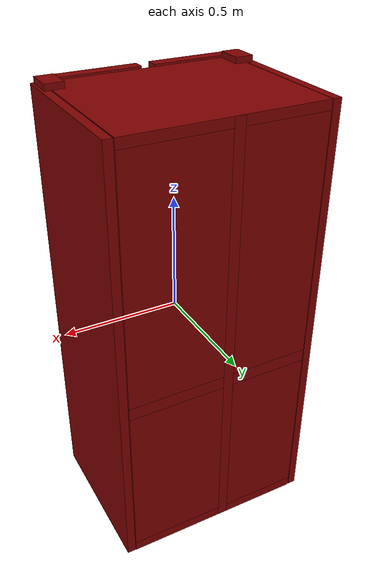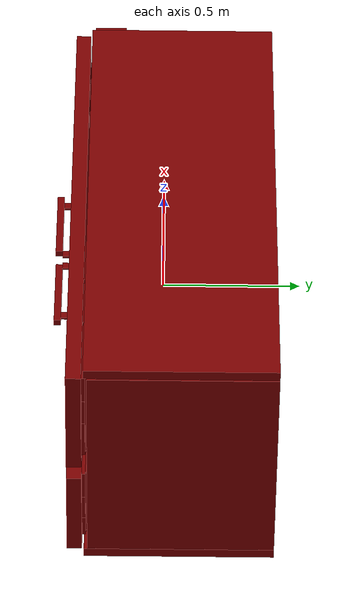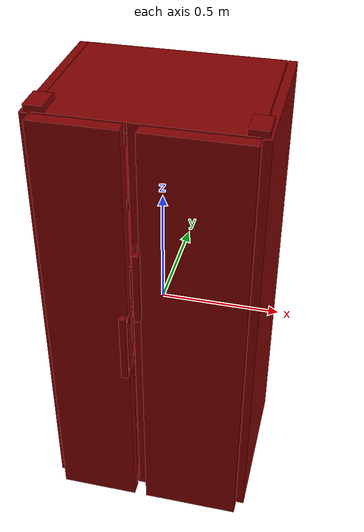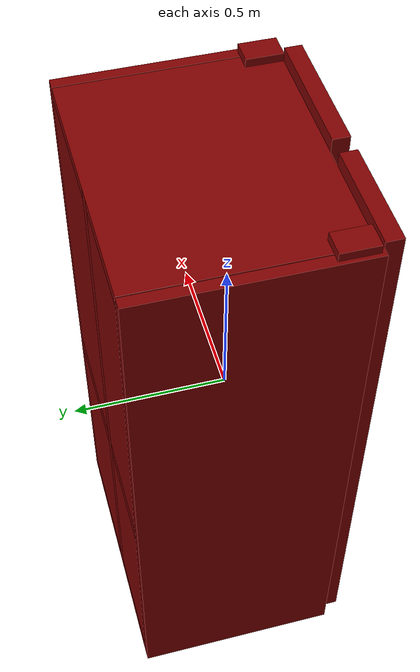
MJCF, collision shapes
<mujoco model="model">
  <compiler angle="radian"/>
  <asset>
    <mesh file="visuals/Body001.obj" name="Body001_vis"/>
    <mesh file="visuals/Body001_Clear.obj" name="Body001_Clear_vis"/>
    <mesh file="visuals/Door001.obj" name="Door001_vis"/>
    <mesh file="visuals/Door001_Clear.obj" name="Door001_Clear_vis"/>
    <mesh file="visuals/Door002.obj" name="Door002_vis"/>
    <mesh file="visuals/Door002_Clear.obj" name="Door002_Clear_vis"/>
    <mesh file="visuals/Drawer001.obj" name="Drawer001_vis"/>
    <mesh file="visuals/Drawer002.obj" name="Drawer002_vis"/>
    <mesh file="visuals/Drawer003.obj" name="Drawer003_vis"/>
    <mesh file="visuals/Drawer004.obj" name="Drawer004_vis"/>
    <mesh file="visuals/Drawer005.obj" name="Drawer005_vis"/>
    <mesh file="visuals/Drawer006.obj" name="Drawer006_vis"/>
    <mesh file="visuals/Drawer007.obj" name="Drawer007_vis"/>
    <mesh file="visuals/Drawer008.obj" name="Drawer008_vis"/>
    <mesh file="visuals/Drawer009.obj" name="Drawer009_vis"/>
    <mesh file="visuals/Drawer010.obj" name="Drawer010_vis"/>
    <texture file="visuals/T_BC001.png" name="Body001_material" type="2d"/>
    <material name="Body001_material" rgba="1 1 1 1.0" texture="Body001_material" shininess="0.2512328028678894" specular="1"/>
    <texture file="visuals/T_BC001.png" name="Body001_Clear_material" type="2d"/>
    <material name="Body001_Clear_material" rgba="1 1 1 0.307692289352417" texture="Body001_Clear_material" shininess="0.2512328028678894" specular="1"/>
    <texture file="visuals/T_BC001.png" name="Door001_material" type="2d"/>
    <material name="Door001_material" rgba="1 1 1 1.0" texture="Door001_material" shininess="0.2512328028678894" specular="1"/>
    <texture file="visuals/T_BC001.png" name="Door001_Clear_material" type="2d"/>
    <material name="Door001_Clear_material" rgba="1 1 1 0.307692289352417" texture="Door001_Clear_material" shininess="0.2512328028678894" specular="1"/>
    <texture file="visuals/T_BC001.png" name="Door002_material" type="2d"/>
    <material name="Door002_material" rgba="1 1 1 1.0" texture="Door002_material" shininess="0.2512328028678894" specular="1"/>
    <texture file="visuals/T_BC001.png" name="Drawer001_material" type="2d"/>
    <material name="Drawer001_material" rgba="1 1 1 0.307692289352417" texture="Drawer001_material" shininess="0.2512328028678894" specular="1"/>
    <texture file="visuals/T_BC001.png" name="Drawer002_material" type="2d"/>
    <material name="Drawer002_material" rgba="1 1 1 0.307692289352417" texture="Drawer002_material" shininess="0.2512328028678894" specular="1"/>
    <texture file="visuals/T_BC001.png" name="Drawer003_material" type="2d"/>
    <material name="Drawer003_material" rgba="1 1 1 1.0" texture="Drawer003_material" shininess="0.2512328028678894" specular="1"/>
    <texture file="visuals/T_BC001.png" name="Drawer004_material" type="2d"/>
    <material name="Drawer004_material" rgba="1 1 1 1.0" texture="Drawer004_material" shininess="0.2512328028678894" specular="1"/>
    <texture file="visuals/T_BC001.png" name="Drawer005_material" type="2d"/>
    <material name="Drawer005_material" rgba="1 1 1 1.0" texture="Drawer005_material" shininess="0.2512328028678894" specular="1"/>
    <texture file="visuals/T_BC001.png" name="Drawer006_material" type="2d"/>
    <material name="Drawer006_material" rgba="1 1 1 1.0" texture="Drawer006_material" shininess="0.2512328028678894" specular="1"/>
    <texture file="visuals/T_BC001.png" name="Drawer007_material" type="2d"/>
    <material name="Drawer007_material" rgba="1 1 1 1.0" texture="Drawer007_material" shininess="0.2512328028678894" specular="1"/>
    <texture file="visuals/T_BC001.png" name="Drawer008_material" type="2d"/>
    <material name="Drawer008_material" rgba="1 1 1 1.0" texture="Drawer008_material" shininess="0.2512328028678894" specular="1"/>
    <texture file="visuals/T_BC001.png" name="Drawer009_material" type="2d"/>
    <material name="Drawer009_material" rgba="1 1 1 1.0" texture="Drawer009_material" shininess="0.2512328028678894" specular="1"/>
    <texture file="visuals/T_BC001.png" name="Drawer010_material" type="2d"/>
    <material name="Drawer010_material" rgba="1 1 1 1.0" texture="Drawer010_material" shininess="0.2512328028678894" specular="1"/>
  </asset>
  <default>
    <default class="visual">
      <geom conaffinity="0" contype="0" group="1" type="mesh"/>
    </default>
    <default class="collision">
      <geom group="0" rgba="0.5 0 0 0.5"/>
    </default>
    <default class="spawn">
      <geom group="0" rgba="1 1 1 0.5" contype="0" conaffinity="0"/>
      <site group="0" rgba="1 1 1 0.5"/>
    </default>
    <default class="region">
      <geom group="1" conaffinity="0" contype="0" rgba="0 1 0 0"/>
    </default>
  </default>
  <worldbody>
    <body>
      <body name="object">
        <geom mesh="Body001_vis" type="mesh" solimp="0.998 0.998 0.001" solref="0.001 1" density="100" friction="0.95 0.3 0.1" class="visual" material="Body001_material"/>
        <geom class="collision" type="box" pos="-0.4314097464084625 0.06337001919746399 -0.00506026204675436" size="0.01807491108775139 0.3385934829711914 0.9483897686004639" quat="1.0 0.0 0.0 0.0"/>
        <geom class="collision" type="box" pos="0.43142756819725037 0.06337001919746399 -0.00506026204675436" size="0.018074944615364075 0.3385940492153168 0.9483909010887146" quat="1.0 0.0 0.0 0.0"/>
        <geom class="collision" type="box" pos="-0.03617599606513977 0.06932438910007477 -0.00506026204675436" size="0.02239586040377617 0.33264604210853577 0.9484035968780518" quat="1.0 0.0 0.0 0.0"/>
        <geom class="collision" type="box" pos="-6.0811638832092285e-05 0.06932438910007477 -0.1588442325592041" size="0.4097903072834015 0.33264076709747314 0.02770553156733513" quat="1.0 0.0 0.0 0.0"/>
        <geom class="collision" type="box" pos="-6.081196988816373e-05 0.06932438910007477 0.9237262010574341" size="0.40979087352752686 0.3326413035392761 0.020109102129936218" quat="1.0 0.0 0.0 0.0"/>
        <geom class="collision" type="box" pos="-6.081513129174709e-05 0.31269246339797974 -0.005961598362773657" size="0.409791499376297 0.08925499022006989 0.9489522576332092" quat="1.0 0.0 0.0 0.0"/>
        <geom class="collision" type="box" pos="-6.081224637455307e-05 0.06932438910007477 -0.9327043294906616" size="0.4097919762134552 0.33264240622520447 0.022771652787923813" quat="1.0 0.0 0.0 0.0"/>
        <geom class="collision" type="box" pos="-0.3987797796726227 -0.2059071958065033 0.9563660621643066" size="0.03880257532000542 0.057414062321186066 0.013140099123120308" quat="1.0 0.0 0.0 0.0"/>
        <geom class="collision" type="box" pos="0.39935022592544556 -0.2059071958065033 0.9563660621643066" size="0.03880264237523079 0.05741412937641144 0.013140116818249226" quat="1.0 0.0 0.0 0.0"/>
        <body name="Body001_Clear">
          <geom mesh="Body001_Clear_vis" type="mesh" solimp="0.998 0.998 0.001" solref="0.001 1" density="100" friction="0.95 0.3 0.1" class="visual" material="Body001_Clear_material"/>
          <geom class="collision" type="box" pos="-0.23665212094783783 0.010217373259365559 0.5880203247070312" size="0.17314791679382324 0.20181740820407867 0.003748399903997779" quat="1.0 0.0 0.0 0.0"/>
          <geom class="collision" type="box" pos="0.19985148310661316 0.010217373259365559 0.5887021422386169" size="0.2091819941997528 0.2018178105354309 0.0037484061904251575" quat="1.0 0.0 0.0 0.0"/>
          <geom class="collision" type="box" pos="-0.23665212094783783 0.010217373259365559 0.27085381746292114" size="0.173148512840271 0.20181860029697418 0.003748418530449271" quat="1.0 0.0 0.0 0.0"/>
          <geom class="collision" type="box" pos="0.19985148310661316 0.010217373259365559 0.27153563499450684" size="0.20918317139148712 0.20181900262832642 0.00374842481687665" quat="1.0 0.0 0.0 0.0"/>
          <geom class="collision" type="box" pos="-0.23665212094783783 0.010217373259365559 0.09032253175973892" size="0.17314891517162323 0.20181940495967865 0.0037484311033040285" quat="1.0 0.0 0.0 0.0"/>
          <geom class="collision" type="box" pos="0.19985148310661316 0.010217373259365559 0.09100434929132462" size="0.2091839760541916 0.20181980729103088 0.003748437389731407" quat="1.0 0.0 0.0 0.0"/>
        </body>
        <body name="Door001">
          <joint axis="0.0 0.0 -1.0" pos="-0.41990166902542114 -0.3070699870586395 -0.1195378378033638" limited="true" name="Door001_joint" range="0.0 1.5707963267948966" type="hinge" damping="1" frictionloss="1" armature=".01" stiffness="0.05"/>
          <geom mesh="Door001_vis" type="mesh" solimp="0.998 0.998 0.001" solref="0.001 1" density="100" friction="0.95 0.3 0.1" class="visual" material="Door001_material"/>
          <geom class="collision" type="box" pos="-0.23585756123065948 -0.30889829993247986 -0.004155337810516357" size="0.17306047677993774 0.02668202668428421 0.9516863822937012" quat="1.0 0.0 0.0 0.0"/>
          <geom class="collision" type="box" pos="-0.06611627340316772 -0.3872798681259155 0.015286712907254696" size="0.012665143236517906 0.012665143236517906 0.1547602117061615" quat="1.0 0.0 0.0 0.0"/>
          <geom class="collision" type="box" pos="-0.047427210956811905 -0.3475547432899475 0.1526123583316803" size="0.004406571388244629 0.027533311396837234 0.014519368298351765" quat="1.0 0.0 0.0 0.0"/>
          <geom class="collision" type="box" pos="-0.047427210956811905 -0.3475547432899475 -0.12197266519069672" size="0.004406571388244629 0.027533311396837234 0.014519368298351765" quat="1.0 0.0 0.0 0.0"/>
          <body name="Door001_Clear">
            <geom mesh="Door001_Clear_vis" type="mesh" solimp="0.998 0.998 0.001" solref="0.001 1" density="100" friction="0.95 0.3 0.1" class="visual" material="Door001_Clear_material"/>
            <geom class="collision" type="box" pos="-0.24373874068260193 -0.27963539958000183 0.7416618466377258" size="0.14503848552703857 0.0009392445208504796 0.049916304647922516" quat="1.0 0.0 0.0 0.0"/>
            <geom class="collision" type="box" pos="-0.3864028751850128 -0.2427847981452942 0.741767406463623" size="0.0009392529027536511 0.03547966107726097 0.04981076717376709" quat="1.0 0.0 0.0 0.0"/>
            <geom class="collision" type="box" pos="-0.24444666504859924 -0.2059074193239212 0.741767406463623" size="0.1408872902393341 0.0009392508072778583 0.04981076717376709" quat="1.0 0.0 0.0 0.0"/>
            <geom class="collision" type="box" pos="-0.10058680176734924 -0.2427847981452942 0.741767406463623" size="0.0009392523788847029 0.03547966107726097 0.04981076717376709" quat="1.0 0.0 0.0 0.0"/>
            <geom class="collision" type="box" pos="-0.24302120506763458 -0.2426450401544571 0.6924877762794495" size="0.14432090520858765 0.0376768633723259 0.0009392482461407781" quat="1.0 0.0 0.0 0.0"/>
            <geom class="collision" type="box" pos="-0.24373874068260193 -0.27963539958000183 0.5614317059516907" size="0.14503848552703857 0.0009392445208504796 0.049916304647922516" quat="1.0 0.0 0.0 0.0"/>
            <geom class="collision" type="box" pos="-0.3864028751850128 -0.2427847981452942 0.5615372657775879" size="0.0009392529027536511 0.03547966107726097 0.04981076717376709" quat="1.0 0.0 0.0 0.0"/>
            <geom class="collision" type="box" pos="-0.24444666504859924 -0.2059074193239212 0.5615372657775879" size="0.1408872902393341 0.0009392508072778583 0.04981076717376709" quat="1.0 0.0 0.0 0.0"/>
            <geom class="collision" type="box" pos="-0.10058680176734924 -0.2427847981452942 0.5615372657775879" size="0.0009392523788847029 0.03547966107726097 0.04981076717376709" quat="1.0 0.0 0.0 0.0"/>
            <geom class="collision" type="box" pos="-0.24302120506763458 -0.2426450401544571 0.5122576355934143" size="0.14432090520858765 0.0376768633723259 0.0009392482461407781" quat="1.0 0.0 0.0 0.0"/>
          </body>
        </body>
        <body name="Door002">
          <joint axis="0.0 0.0 1.0" pos="0.420387864112854 -0.3062276244163513 -0.09063228964805603" limited="true" name="Door002_joint" range="0.0 1.5707963267948966" type="hinge" damping="1" frictionloss="1" armature=".01" stiffness="0.05"/>
          <geom mesh="Door002_vis" type="mesh" solimp="0.998 0.998 0.001" solref="0.001 1" density="100" friction="0.95 0.3 0.1" class="visual" material="Door002_material"/>
          <geom class="collision" type="box" pos="0.2084599882364273 -0.27963539958000183 0.7416618466377258" size="0.17995940148830414 0.0009392445208504796 0.049916304647922516" quat="1.0 0.0 0.0 0.0"/>
          <geom class="collision" type="box" pos="0.030874965712428093 -0.2427847981452942 0.741767406463623" size="0.0009392523788847029 0.03547966107726097 0.04981076717376709" quat="1.0 0.0 0.0 0.0"/>
          <geom class="collision" type="box" pos="0.2077520787715912 -0.2059074193239212 0.741767406463623" size="0.17580822110176086 0.0009392508072778583 0.04981076717376709" quat="1.0 0.0 0.0 0.0"/>
          <geom class="collision" type="box" pos="0.38653287291526794 -0.2427847981452942 0.741767406463623" size="0.0009392523788847029 0.03547966107726097 0.04981076717376709" quat="1.0 0.0 0.0 0.0"/>
          <geom class="collision" type="box" pos="0.20917755365371704 -0.2426450401544571 0.6924877762794495" size="0.1792418360710144 0.0376768633723259 0.0009392482461407781" quat="1.0 0.0 0.0 0.0"/>
          <geom class="collision" type="box" pos="0.2084599882364273 -0.27963539958000183 0.5617579817771912" size="0.17995940148830414 0.0009392445208504796 0.049916304647922516" quat="1.0 0.0 0.0 0.0"/>
          <geom class="collision" type="box" pos="0.030874965712428093 -0.2427847981452942 0.5618635416030884" size="0.0009392523788847029 0.03547966107726097 0.04981076717376709" quat="1.0 0.0 0.0 0.0"/>
          <geom class="collision" type="box" pos="0.2077520787715912 -0.2059074193239212 0.5618635416030884" size="0.17580822110176086 0.0009392508072778583 0.04981076717376709" quat="1.0 0.0 0.0 0.0"/>
          <geom class="collision" type="box" pos="0.38653287291526794 -0.2427847981452942 0.5618635416030884" size="0.0009392523788847029 0.03547966107726097 0.04981076717376709" quat="1.0 0.0 0.0 0.0"/>
          <geom class="collision" type="box" pos="0.20917755365371704 -0.2426450401544571 0.5125839114189148" size="0.1792418360710144 0.0376768633723259 0.0009392482461407781" quat="1.0 0.0 0.0 0.0"/>
          <geom class="collision" type="box" pos="0.20360955595970154 -0.30889829993247986 -0.004155337810516357" size="0.21106405556201935 0.02668202668428421 0.9516863822937012" quat="1.0 0.0 0.0 0.0"/>
          <geom class="collision" type="box" pos="-0.003860831493511796 -0.3872798681259155 0.32808175683021545" size="0.012665143236517906 0.012665143236517906 0.1547602117061615" quat="1.0 0.0 0.0 0.0"/>
          <geom class="collision" type="box" pos="-0.02287726104259491 -0.3475547432899475 0.4654074013233185" size="0.004406571388244629 0.027533311396837234 0.014519368298351765" quat="1.0 0.0 0.0 0.0"/>
          <geom class="collision" type="box" pos="-0.02287726104259491 -0.3475547432899475 0.19082237780094147" size="0.004406571388244629 0.027533311396837234 0.014519368298351765" quat="1.0 0.0 0.0 0.0"/>
        </body>
        <body name="Drawer001">
          <joint axis="0.0 -1.0 0.0" pos="-0.2171107530593872 0.003605358302593231 0.17583005130290985" limited="true" name="Drawer001_joint" range="0.0 0.3" type="slide" damping="1" frictionloss="1" armature=".01" stiffness="0.05"/>
          <geom mesh="Drawer001_vis" type="mesh" solimp="0.998 0.998 0.001" solref="0.001 1" density="100" friction="0.95 0.3 0.1" class="visual" material="Drawer001_material"/>
          <geom class="collision" type="box" pos="-0.21498090028762817 -0.18433767557144165 0.1492915153503418" size="0.045026764273643494 0.00229278695769608 0.023585114628076553" quat="0.9961947202682495 -0.08715573698282242 -0.0 0.0"/>
          <geom class="collision" type="box" pos="-0.21498090028762817 -0.18433767557144165 0.11113771051168442" size="0.04502692073583603 0.006329035852104425 0.014568768441677094" quat="1.0 0.0 0.0 0.0"/>
          <geom class="collision" type="box" pos="-0.21498090028762817 -0.18433767557144165 0.2143215537071228" size="0.04502691701054573 0.006329035386443138 0.04171183705329895" quat="1.0 0.0 0.0 0.0"/>
          <geom class="collision" type="box" pos="-0.11758849024772644 -0.18433767557144165 0.1761946976184845" size="0.052365921437740326 0.006329034920781851 0.0798388421535492" quat="1.0 0.0 0.0 0.0"/>
          <geom class="collision" type="box" pos="-0.21848009526729584 0.005912944674491882 0.10902069509029388" size="0.1405802071094513 0.18467341363430023 0.0032004129607230425" quat="1.0 0.0 0.0 0.0"/>
          <geom class="collision" type="box" pos="-0.08011176437139511 0.0059129465371370316 0.17514479160308838" size="0.0032007861882448196 0.18467363715171814 0.06957511603832245" quat="1.0 0.0 0.0 0.0"/>
          <geom class="collision" type="box" pos="-0.35516542196273804 0.0059129465371370316 0.17514479160308838" size="0.0032007957343012094 0.18467389047145844 0.0695752203464508" quat="1.0 0.0 0.0 0.0"/>
          <geom class="collision" type="box" pos="-0.21848006546497345 0.19479244947433472 0.17514479160308838" size="0.1405809372663498 0.0029303827323019505 0.06957533210515976" quat="1.0 0.0 0.0 0.0"/>
          <geom class="collision" type="box" pos="-0.21498090028762817 -0.17966006696224213 0.1492915153503418" size="0.045026764273643494 0.0017136718379333615 0.024223076179623604" quat="1.0 0.0 0.0 0.0"/>
          <geom class="collision" type="box" pos="-0.3146893382072449 -0.18433767557144165 0.1761946976184845" size="0.054681938141584396 0.00632903166115284 0.07983879745006561" quat="1.0 0.0 0.0 0.0"/>
        </body>
        <body name="Drawer002">
          <joint axis="0.0 -1.0 0.0" pos="-0.21935637295246124 0.0045370422303676605 -0.02909039705991745" limited="true" name="Drawer002_joint" range="0.0 0.3" type="slide" damping="1" frictionloss="1" armature=".01" stiffness="0.05"/>
          <geom mesh="Drawer002_vis" type="mesh" solimp="0.998 0.998 0.001" solref="0.001 1" density="100" friction="0.95 0.3 0.1" class="visual" material="Drawer002_material"/>
          <geom class="collision" type="box" pos="-0.2035452425479889 -0.18433767557144165 -0.04448869824409485" size="0.045026764273643494 0.00229278695769608 0.023585114628076553" quat="0.9961947202682495 -0.08715573698282242 -0.0 0.0"/>
          <geom class="collision" type="box" pos="-0.2035452425479889 -0.18433767557144165 -0.09826967120170593" size="0.045026995241642 0.006329045165330172 0.030196093022823334" quat="1.0 0.0 0.0 0.0"/>
          <geom class="collision" type="box" pos="-0.2035452425479889 -0.18433767557144165 0.024742193520069122" size="0.0450269915163517 0.006329044699668884 0.045912764966487885" quat="1.0 0.0 0.0 0.0"/>
          <geom class="collision" type="box" pos="-0.11397108435630798 -0.18433767557144165 -0.029011834412813187" size="0.04454759135842323 0.006329044234007597 0.0996670126914978" quat="1.0 0.0 0.0 0.0"/>
          <geom class="collision" type="box" pos="-0.22091658413410187 0.005912944674491882 -0.11601385474205017" size="0.13881613314151764 0.1846737116575241 0.003200417384505272" quat="1.0 0.0 0.0 0.0"/>
          <geom class="collision" type="box" pos="-0.08431261777877808 0.0059129465371370316 -0.02670106291770935" size="0.003200795268639922 0.18467393517494202 0.09276396036148071" quat="1.0 0.0 0.0 0.0"/>
          <geom class="collision" type="box" pos="-0.35583755373954773 0.0059129465371370316 -0.02670106291770935" size="0.0032008050475269556 0.1846741884946823 0.09276406466960907" quat="1.0 0.0 0.0 0.0"/>
          <geom class="collision" type="box" pos="-0.22091655433177948 0.19479244947433472 -0.02670106291770935" size="0.13881686329841614 0.0029303873889148235 0.09276417642831802" quat="1.0 0.0 0.0 0.0"/>
          <geom class="collision" type="box" pos="-0.2035452425479889 -0.17966006696224213 -0.04448869824409485" size="0.045026764273643494 0.0017136718379333615 0.02422311343252659" quat="1.0 0.0 0.0 0.0"/>
          <geom class="collision" type="box" pos="-0.3093075752258301 -0.18433767557144165 -0.029011834412813187" size="0.06073598191142082 0.006329040974378586 0.09966696798801422" quat="1.0 0.0 0.0 0.0"/>
        </body>
        <body name="Drawer003">
          <joint axis="0.0 -1.0 0.0" pos="-0.22957569360733032 -0.09317242354154587 -0.29646196961402893" limited="true" name="Drawer003_joint" range="0.0 0.3" type="slide" damping="1" frictionloss="1" armature=".01" stiffness="0.05"/>
          <geom mesh="Drawer003_vis" type="mesh" solimp="0.998 0.998 0.001" solref="0.001 1" density="100" friction="0.95 0.3 0.1" class="visual" material="Drawer003_material"/>
          <geom class="collision" type="box" pos="-0.23052501678466797 0.09210389107465744 -0.3017696738243103" size="0.1441011279821396 0.003485064022243023 0.08683301508426666" quat="1.0 0.0 0.0 0.0"/>
          <geom class="collision" type="box" pos="-0.37413159012794495 -0.09073059260845184 -0.3017696738243103" size="0.0032007170375436544 0.17880745232105255 0.08683387190103531" quat="1.0 0.0 0.0 0.0"/>
          <geom class="collision" type="box" pos="-0.08575929701328278 -0.09073059260845184 -0.3017696738243103" size="0.003200708655640483 0.17880716919898987 0.08683373034000397" quat="1.0 0.0 0.0 0.0"/>
          <geom class="collision" type="box" pos="-0.2287599891424179 -0.09018582105636597 -0.38537874817848206" size="0.14410027861595154 0.17935170233249664 0.0032003724481910467" quat="1.0 0.0 0.0 0.0"/>
          <geom class="collision" type="box" pos="-0.13881486654281616 -0.2758253812789917 -0.2961459159851074" size="0.0568477064371109 0.006329031195491552 0.10329634696245193" quat="1.0 0.0 0.0 0.0"/>
          <geom class="collision" type="box" pos="-0.247208833694458 -0.2758253812789917 -0.23707079887390137" size="0.05154670774936676 0.006329030729830265 0.04422110319137573" quat="1.0 0.0 0.0 0.0"/>
          <geom class="collision" type="box" pos="-0.247208833694458 -0.2758253812789917 -0.3646923899650574" size="0.05154670029878616 0.006329030264168978 0.03453686088323593" quat="1.0 0.0 0.0 0.0"/>
          <geom class="collision" type="box" pos="-0.3406710624694824 -0.2758253812789917 -0.2961459159851074" size="0.0419158861041069 0.00632902979850769 0.10329632461071014" quat="1.0 0.0 0.0 0.0"/>
          <geom class="collision" type="box" pos="-0.24720881879329681 -0.27526262402534485 -0.3047477602958679" size="0.05154647305607796 0.00229278695769608 0.023585114628076553" quat="0.9961947202682495 -0.08715573698282242 -0.0 0.0"/>
          <geom class="collision" type="box" pos="-0.24720881879329681 -0.2714467942714691 -0.3047477602958679" size="0.05154647305607796 0.00229278695769608 0.023585114628076553" quat="1.0 0.0 0.0 0.0"/>
        </body>
        <body name="Drawer004">
          <joint axis="0.0 -1.0 0.0" pos="-0.22957569360733032 -0.09317241609096527 -0.5194770693778992" limited="true" name="Drawer004_joint" range="0.0 0.3" type="slide" damping="1" frictionloss="1" armature=".01" stiffness="0.05"/>
          <geom mesh="Drawer004_vis" type="mesh" solimp="0.998 0.998 0.001" solref="0.001 1" density="100" friction="0.95 0.3 0.1" class="visual" material="Drawer004_material"/>
          <geom class="collision" type="box" pos="-0.23052500188350677 0.09207402169704437 -0.5247526168823242" size="0.14409838616847992 0.0029303007759153843 0.08683264255523682" quat="1.0 0.0 0.0 0.0"/>
          <geom class="collision" type="box" pos="-0.37413159012794495 -0.09073059260845184 -0.5247526168823242" size="0.0032006315886974335 0.1788046807050705 0.08683249354362488" quat="1.0 0.0 0.0 0.0"/>
          <geom class="collision" type="box" pos="-0.08575929701328278 -0.09073059260845184 -0.5247526168823242" size="0.003200623206794262 0.1788043975830078 0.08683235198259354" quat="1.0 0.0 0.0 0.0"/>
          <geom class="collision" type="box" pos="-0.2287599891424179 -0.09018582105636597 -0.6083617210388184" size="0.14409753680229187 0.1793489307165146 0.0032003293745219707" quat="1.0 0.0 0.0 0.0"/>
          <geom class="collision" type="box" pos="-0.24720881879329681 -0.27526262402534485 -0.5284433364868164" size="0.05154647305607796 0.00229278695769608 0.023585114628076553" quat="0.9961947202682495 -0.08715573698282242 -0.0 0.0"/>
          <geom class="collision" type="box" pos="-0.3406710624694824 -0.2758253812789917 -0.5198414325714111" size="0.041915882378816605 0.006329028867185116 0.10329631716012955" quat="1.0 0.0 0.0 0.0"/>
          <geom class="collision" type="box" pos="-0.247208833694458 -0.2758253812789917 -0.5883879661560059" size="0.05154667794704437 0.0063290284015238285 0.034536849707365036" quat="1.0 0.0 0.0 0.0"/>
          <geom class="collision" type="box" pos="-0.247208833694458 -0.2758253812789917 -0.46076634526252747" size="0.05154666677117348 0.006329027935862541 0.04422108456492424" quat="1.0 0.0 0.0 0.0"/>
          <geom class="collision" type="box" pos="-0.13881486654281616 -0.2758253812789917 -0.5198414325714111" size="0.056847650557756424 0.006329027470201254 0.10329629480838776" quat="1.0 0.0 0.0 0.0"/>
          <geom class="collision" type="box" pos="-0.24720881879329681 -0.27072015404701233 -0.5284433364868164" size="0.05154647305607796 0.00229278695769608 0.023585114628076553" quat="1.0 0.0 0.0 0.0"/>
        </body>
        <body name="Drawer005">
          <joint axis="0.0 -1.0 0.0" pos="-0.22957569360733032 -0.09317249804735184 -0.7747529745101929" limited="true" name="Drawer005_joint" range="0.0 0.3" type="slide" damping="1" frictionloss="1" armature=".01" stiffness="0.05"/>
          <geom mesh="Drawer005_vis" type="mesh" solimp="0.998 0.998 0.001" solref="0.001 1" density="100" friction="0.95 0.3 0.1" class="visual" material="Drawer005_material"/>
          <geom class="collision" type="box" pos="-0.23052500188350677 0.09207402169704437 -0.7800319790840149" size="0.14409565925598145 0.0029302574694156647 0.12170929461717606" quat="1.0 0.0 0.0 0.0"/>
          <geom class="collision" type="box" pos="-0.37413159012794495 -0.09073059260845184 -0.7800319194793701" size="0.0032005461398512125 0.17880190908908844 0.12170900404453278" quat="1.0 0.0 0.0 0.0"/>
          <geom class="collision" type="box" pos="-0.08575929701328278 -0.09073059260845184 -0.7800319194793701" size="0.003200537757948041 0.17880164086818695 0.12170872837305069" quat="1.0 0.0 0.0 0.0"/>
          <geom class="collision" type="box" pos="-0.2287599891424179 -0.09018582850694656 -0.8985105156898499" size="0.1440948098897934 0.17934617400169373 0.0032002872321754694" quat="1.0 0.0 0.0 0.0"/>
          <geom class="collision" type="box" pos="-0.13881486654281616 -0.2758253812789917 -0.7745332717895508" size="0.05684764310717583 0.006329027004539967 0.13777707517147064" quat="1.0 0.0 0.0 0.0"/>
          <geom class="collision" type="box" pos="-0.247208833694458 -0.2758253812789917 -0.701343297958374" size="0.051546644419431686 0.006329026538878679 0.06458690017461777" quat="1.0 0.0 0.0 0.0"/>
          <geom class="collision" type="box" pos="-0.247208833694458 -0.2758253812789917 -0.863445520401001" size="0.05154663696885109 0.006329026073217392 0.04865168780088425" quat="1.0 0.0 0.0 0.0"/>
          <geom class="collision" type="box" pos="-0.3406710624694824 -0.2758253812789917 -0.7745332717895508" size="0.04191585257649422 0.006329025607556105 0.13777701556682587" quat="1.0 0.0 0.0 0.0"/>
          <geom class="collision" type="box" pos="-0.24720881879329681 -0.27526262402534485 -0.789509654045105" size="0.05154647305607796 0.00229278695769608 0.023585114628076553" quat="0.9961947202682495 -0.08715573698282242 -0.0 0.0"/>
          <geom class="collision" type="box" pos="-0.24720881879329681 -0.271382600069046 -0.789509654045105" size="0.05154647305607796 0.00229278695769608 0.023585114628076553" quat="1.0 0.0 0.0 0.0"/>
        </body>
        <body name="Drawer006">
          <joint axis="0.0 -1.0 0.0" pos="0.17629678547382355 0.003605358302593231 0.17583005130290985" limited="true" name="Drawer006_joint" range="0.0 0.3" type="slide" damping="1" frictionloss="1" armature=".01" stiffness="0.05"/>
          <geom mesh="Drawer006_vis" type="mesh" solimp="0.998 0.998 0.001" solref="0.001 1" density="100" friction="0.95 0.3 0.1" class="visual" material="Drawer006_material"/>
          <geom class="collision" type="box" pos="0.0616711750626564 -0.18433767557144165 0.1761946976184845" size="0.06867996603250504 0.006329081021249294 0.07983958721160889" quat="1.0 0.0 0.0 0.0"/>
          <geom class="collision" type="box" pos="0.17543846368789673 0.19479244947433472 0.17514479160308838" size="0.17213769257068634 0.002930406713858247 0.06957609951496124" quat="1.0 0.0 0.0 0.0"/>
          <geom class="collision" type="box" pos="0.007197858300060034 0.0059129465371370316 0.17514479160308838" size="0.003200841136276722 0.18467538058757782 0.0695759728550911" quat="1.0 0.0 0.0 0.0"/>
          <geom class="collision" type="box" pos="0.34536200761795044 0.0059129465371370316 0.17514479160308838" size="0.0032008313573896885 0.18467511236667633 0.06957584619522095" quat="1.0 0.0 0.0 0.0"/>
          <geom class="collision" type="box" pos="0.17543844878673553 0.005912944674491882 0.10902069509029388" size="0.17213687300682068 0.18467484414577484 0.0032004353124648333" quat="1.0 0.0 0.0 0.0"/>
          <geom class="collision" type="box" pos="0.2898605167865753 -0.18433767557144165 0.1761946976184845" size="0.06945736706256866 0.006329047027975321 0.07983904331922531" quat="1.0 0.0 0.0 0.0"/>
          <geom class="collision" type="box" pos="0.17537686228752136 -0.18433767557144165 0.2143215537071228" size="0.045027006417512894 0.0063290465623140335 0.04171192646026611" quat="1.0 0.0 0.0 0.0"/>
          <geom class="collision" type="box" pos="0.17537686228752136 -0.18433767557144165 0.11113771051168442" size="0.045027002692222595 0.006329046096652746 0.014568810351192951" quat="1.0 0.0 0.0 0.0"/>
          <geom class="collision" type="box" pos="0.17537686228752136 -0.18433767557144165 0.1492915153503418" size="0.045026764273643494 0.00229278695769608 0.023585114628076553" quat="0.9961947202682495 -0.08715573698282242 -0.0 0.0"/>
          <geom class="collision" type="box" pos="0.17537686228752136 -0.17966006696224213 0.1492915153503418" size="0.045026764273643494 0.0017136718379333615 0.02422313019633293" quat="1.0 0.0 0.0 0.0"/>
        </body>
        <body name="Drawer007">
          <joint axis="0.0 -1.0 0.0" pos="0.17870624363422394 0.0045370422303676605 -0.02909039705991745" limited="true" name="Drawer007_joint" range="0.0 0.3" type="slide" damping="1" frictionloss="1" armature=".01" stiffness="0.05"/>
          <geom mesh="Drawer007_vis" type="mesh" solimp="0.998 0.998 0.001" solref="0.001 1" density="100" friction="0.95 0.3 0.1" class="visual" material="Drawer007_material"/>
          <geom class="collision" type="box" pos="0.15827108919620514 -0.17966006696224213 -0.04448869824409485" size="0.045026764273643494 0.0017136718379333615 0.02422310970723629" quat="1.0 0.0 0.0 0.0"/>
          <geom class="collision" type="box" pos="0.1769038885831833 0.19479244947433472 -0.02670106291770935" size="0.16865964233875275 0.0029303862247616053 0.09276413917541504" quat="1.0 0.0 0.0 0.0"/>
          <geom class="collision" type="box" pos="0.012140035629272461 0.0059129465371370316 -0.02670106291770935" size="0.003200802020728588 0.18467408418655396 0.09276401996612549" quat="1.0 0.0 0.0 0.0"/>
          <geom class="collision" type="box" pos="0.34559696912765503 0.0059129465371370316 -0.02670106291770935" size="0.003200789215043187 0.18467380106449127 0.09276389330625534" quat="1.0 0.0 0.0 0.0"/>
          <geom class="collision" type="box" pos="0.1769038587808609 0.005912944674491882 -0.11601385474205017" size="0.1686588078737259 0.18467354774475098 0.0032004148233681917" quat="1.0 0.0 0.0 0.0"/>
          <geom class="collision" type="box" pos="0.2807687222957611 -0.18433767557144165 -0.029011834412813187" size="0.07747119665145874 0.006329037714749575 0.09966691583395004" quat="1.0 0.0 0.0 0.0"/>
          <geom class="collision" type="box" pos="0.15827108919620514 -0.18433767557144165 0.024742193520069122" size="0.04502693563699722 0.006329037249088287 0.04591270908713341" quat="1.0 0.0 0.0 0.0"/>
          <geom class="collision" type="box" pos="0.15827108919620514 -0.18433767557144165 -0.09826967120170593" size="0.045026931911706924 0.006329036783427 0.03019602783024311" quat="1.0 0.0 0.0 0.0"/>
          <geom class="collision" type="box" pos="0.05558938533067703 -0.18433767557144165 -0.029011834412813187" size="0.05765528231859207 0.006329036317765713 0.09966689348220825" quat="1.0 0.0 0.0 0.0"/>
          <geom class="collision" type="box" pos="0.15827108919620514 -0.18433767557144165 -0.04448869824409485" size="0.045026764273643494 0.00229278695769608 0.023585114628076553" quat="0.9961947202682495 -0.08715573698282242 -0.0 0.0"/>
        </body>
        <body name="Drawer008">
          <joint axis="0.0 -1.0 0.0" pos="0.19439907371997833 -0.09317242354154587 -0.29646196961402893" limited="true" name="Drawer008_joint" range="0.0 0.3" type="slide" damping="1" frictionloss="1" armature=".01" stiffness="0.05"/>
          <geom mesh="Drawer008_vis" type="mesh" solimp="0.998 0.998 0.001" solref="0.001 1" density="100" friction="0.95 0.3 0.1" class="visual" material="Drawer008_material"/>
          <geom class="collision" type="box" pos="0.19592899084091187 0.0917285680770874 -0.3012940585613251" size="0.17917253077030182 0.0034850407391786575 0.08665382862091064" quat="1.0 0.0 0.0 0.0"/>
          <geom class="collision" type="box" pos="0.01671856828033924 -0.09091895818710327 -0.3012940585613251" size="0.0032006746623665094 0.17846788465976715 0.0866546630859375" quat="1.0 0.0 0.0 0.0"/>
          <geom class="collision" type="box" pos="0.37204763293266296 -0.09091895818710327 -0.3012940585613251" size="0.0032006646506488323 0.17846760153770447 0.08665452152490616" quat="1.0 0.0 0.0 0.0"/>
          <geom class="collision" type="box" pos="0.19249273836612701 -0.09091896563768387 -0.38449805974960327" size="0.17917168140411377 0.17846734821796417 0.0032003503292798996" quat="1.0 0.0 0.0 0.0"/>
          <geom class="collision" type="box" pos="0.21431928873062134 -0.27526262402534485 -0.3047477602958679" size="0.05154647305607796 0.00229278695769608 0.023585114628076553" quat="0.9961947202682495 -0.08715573698282242 -0.0 0.0"/>
          <geom class="collision" type="box" pos="0.08758071064949036 -0.2758253812789917 -0.2961459159851074" size="0.07519227266311646 0.006329025141894817 0.10329625010490417" quat="1.0 0.0 0.0 0.0"/>
          <geom class="collision" type="box" pos="0.21431928873062134 -0.2758253812789917 -0.3646923899650574" size="0.051546610891819 0.00632902467623353 0.03453681617975235" quat="1.0 0.0 0.0 0.0"/>
          <geom class="collision" type="box" pos="0.21431928873062134 -0.2758253812789917 -0.23707079887390137" size="0.0515466034412384 0.006329023744910955 0.044221051037311554" quat="1.0 0.0 0.0 0.0"/>
          <geom class="collision" type="box" pos="0.32089290022850037 -0.2758253812789917 -0.2961459159851074" size="0.05502722039818764 0.006329023279249668 0.10329622775316238" quat="1.0 0.0 0.0 0.0"/>
          <geom class="collision" type="box" pos="0.21431928873062134 -0.2708386778831482 -0.3047477602958679" size="0.05154647305607796 0.00229278695769608 0.023585114628076553" quat="1.0 0.0 0.0 0.0"/>
        </body>
        <body name="Drawer009">
          <joint axis="0.0 -1.0 0.0" pos="0.19439907371997833 -0.09317241609096527 -0.5194770693778992" limited="true" name="Drawer009_joint" range="0.0 0.3" type="slide" damping="1" frictionloss="1" armature=".01" stiffness="0.05"/>
          <geom mesh="Drawer009_vis" type="mesh" solimp="0.998 0.998 0.001" solref="0.001 1" density="100" friction="0.95 0.3 0.1" class="visual" material="Drawer009_material"/>
          <geom class="collision" type="box" pos="0.19592899084091187 0.09175843745470047 -0.5242770314216614" size="0.17916978895664215 0.002930280053988099 0.08665341883897781" quat="1.0 0.0 0.0 0.0"/>
          <geom class="collision" type="box" pos="0.01671856828033924 -0.09091895818710327 -0.5242770314216614" size="0.0032005892135202885 0.1784651279449463 0.08665327727794647" quat="1.0 0.0 0.0 0.0"/>
          <geom class="collision" type="box" pos="0.37204763293266296 -0.09091895818710327 -0.5242770314216614" size="0.0032005792018026114 0.1784648448228836 0.08665313571691513" quat="1.0 0.0 0.0 0.0"/>
          <geom class="collision" type="box" pos="0.19249273836612701 -0.09091896563768387 -0.6074810028076172" size="0.1791689395904541 0.17846457660198212 0.00320030702278018" quat="1.0 0.0 0.0 0.0"/>
          <geom class="collision" type="box" pos="0.3210240602493286 -0.2758253812789917 -0.5198414325714111" size="0.0544670931994915 0.006329022813588381 0.10329622030258179" quat="1.0 0.0 0.0 0.0"/>
          <geom class="collision" type="box" pos="0.21501058340072632 -0.2758253812789917 -0.46076634526252747" size="0.051546577364206314 0.0063290223479270935 0.04422103613615036" quat="1.0 0.0 0.0 0.0"/>
          <geom class="collision" type="box" pos="0.21501058340072632 -0.2758253812789917 -0.5883879661560059" size="0.05154656991362572 0.006329021882265806 0.03453679382801056" quat="1.0 0.0 0.0 0.0"/>
          <geom class="collision" type="box" pos="0.08698596060276031 -0.2758253812789917 -0.5198414325714111" size="0.07647824287414551 0.006329021416604519 0.1032961905002594" quat="1.0 0.0 0.0 0.0"/>
          <geom class="collision" type="box" pos="0.21501058340072632 -0.27526262402534485 -0.5284433364868164" size="0.05154647305607796 0.00229278695769608 0.023585114628076553" quat="0.9961947202682495 -0.08715573698282242 -0.0 0.0"/>
          <geom class="collision" type="box" pos="0.21501058340072632 -0.2710040509700775 -0.5284433364868164" size="0.05154647305607796 0.00229278695769608 0.023585114628076553" quat="1.0 0.0 0.0 0.0"/>
        </body>
        <body name="Drawer010">
          <joint axis="0.0 -1.0 0.0" pos="0.19439907371997833 -0.09317249804735184 -0.7747529745101929" limited="true" name="Drawer010_joint" range="0.0 0.3" type="slide" damping="1" frictionloss="1" armature=".01" stiffness="0.05"/>
          <geom mesh="Drawer010_vis" type="mesh" solimp="0.998 0.998 0.001" solref="0.001 1" density="100" friction="0.95 0.3 0.1" class="visual" material="Drawer010_material"/>
          <geom class="collision" type="box" pos="0.19592899084091187 0.09175843745470047 -0.7795563340187073" size="0.17916706204414368 0.002930236980319023 0.12152937799692154" quat="1.0 0.0 0.0 0.0"/>
          <geom class="collision" type="box" pos="0.01671856828033924 -0.09091895818710327 -0.7795563340187073" size="0.0032005037646740675 0.17846235632896423 0.12152910232543945" quat="1.0 0.0 0.0 0.0"/>
          <geom class="collision" type="box" pos="0.37204763293266296 -0.09091895818710327 -0.7795563340187073" size="0.0032004937529563904 0.17846207320690155 0.12152881920337677" quat="1.0 0.0 0.0 0.0"/>
          <geom class="collision" type="box" pos="0.19249273836612701 -0.09091897308826447 -0.8976297974586487" size="0.17916621267795563 0.17846181988716125 0.003200266044586897" quat="1.0 0.0 0.0 0.0"/>
          <geom class="collision" type="box" pos="0.21438169479370117 -0.27526262402534485 -0.789509654045105" size="0.05154647305607796 0.00229278695769608 0.023585114628076553" quat="0.9961947202682495 -0.08715573698282242 -0.0 0.0"/>
          <geom class="collision" type="box" pos="0.08771310746669769 -0.2758253812789917 -0.7745332717895508" size="0.07512220740318298 0.006329020950943232 0.13777686655521393" quat="1.0 0.0 0.0 0.0"/>
          <geom class="collision" type="box" pos="0.21438169479370117 -0.2758253812789917 -0.863445520401001" size="0.051546547561883926 0.006329020485281944 0.048651643097400665" quat="1.0 0.0 0.0 0.0"/>
          <geom class="collision" type="box" pos="0.21438169479370117 -0.2758253812789917 -0.701343297958374" size="0.05154654011130333 0.006329020019620657 0.06458679586648941" quat="1.0 0.0 0.0 0.0"/>
          <geom class="collision" type="box" pos="0.3210253119468689 -0.2758253812789917 -0.7745332717895508" size="0.05509716272354126 0.006329019088298082 0.13777682185173035" quat="1.0 0.0 0.0 0.0"/>
          <geom class="collision" type="box" pos="0.21438169479370117 -0.270767480134964 -0.789509654045105" size="0.05154647305607796 0.00229278695769608 0.023585114628076553" quat="1.0 0.0 0.0 0.0"/>
        </body>
        <geom class="region" name="reg_main" type="box" pos="7.450580596923828e-09 0.033196091651916504 -7.450580596923828e-08" size="0.44999998807907104 0.3687743544578552 0.9698987603187561"/>
      </body>
    </body>
  </worldbody>
  <actuator>
    <motor name="Door001_joint_actuator" joint="Door001_joint" gear="50"/>
    <motor name="Door002_joint_actuator" joint="Door002_joint" gear="50"/>
    <motor name="Drawer001_joint_actuator" joint="Drawer001_joint" gear="50"/>
    <motor name="Drawer002_joint_actuator" joint="Drawer002_joint" gear="50"/>
    <motor name="Drawer003_joint_actuator" joint="Drawer003_joint" gear="50"/>
    <motor name="Drawer004_joint_actuator" joint="Drawer004_joint" gear="50"/>
    <motor name="Drawer005_joint_actuator" joint="Drawer005_joint" gear="50"/>
    <motor name="Drawer006_joint_actuator" joint="Drawer006_joint" gear="50"/>
    <motor name="Drawer007_joint_actuator" joint="Drawer007_joint" gear="50"/>
    <motor name="Drawer008_joint_actuator" joint="Drawer008_joint" gear="50"/>
    <motor name="Drawer009_joint_actuator" joint="Drawer009_joint" gear="50"/>
    <motor name="Drawer010_joint_actuator" joint="Drawer010_joint" gear="50"/>
  </actuator>
</mujoco>
